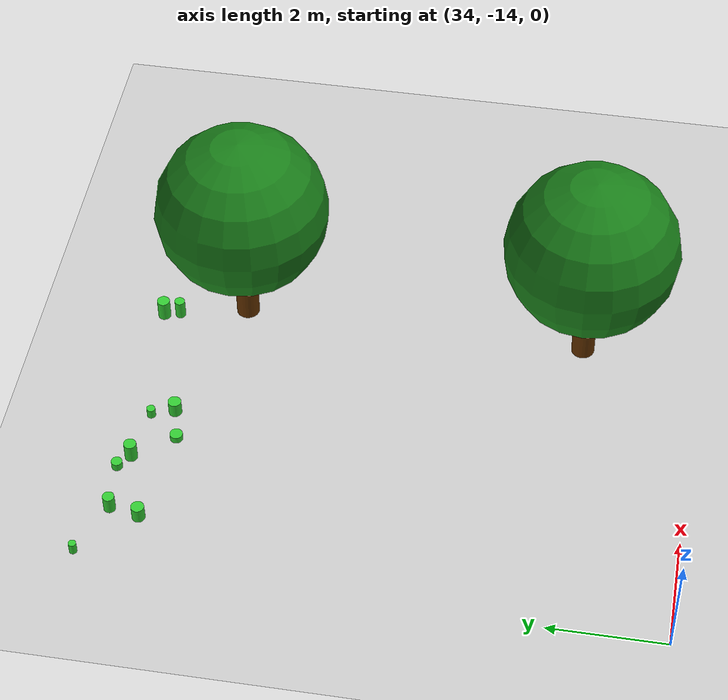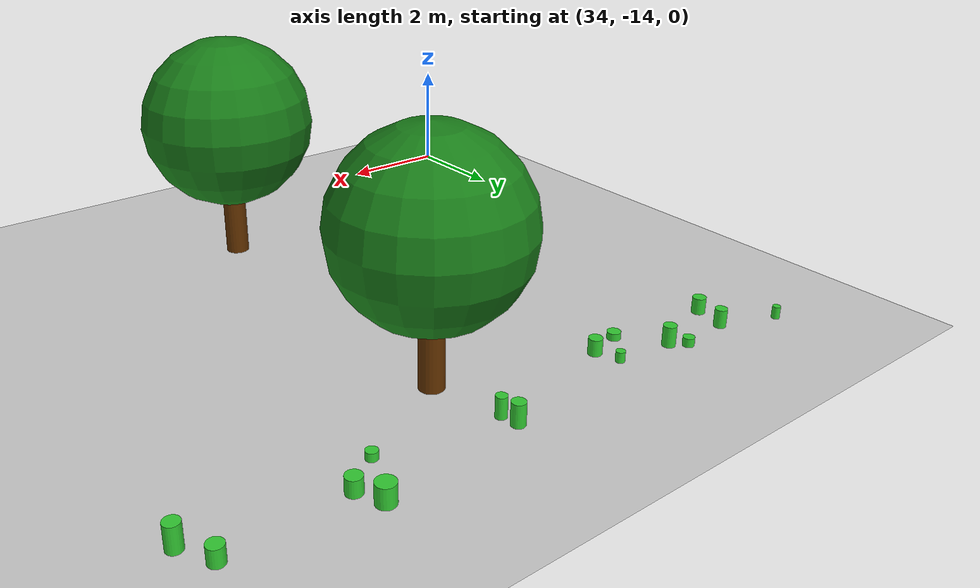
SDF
<sdf version="1.6">
 <world name="street_park_world">
  <include><uri>model://sun</uri></include>
  <include><uri>model://ground_plane</uri></include>
  <model name="tree_33">
   <pose>40 -6 0 0 0 0</pose>
   <static>true</static>
   <link name="trunk">
    <pose>0 0 1 0 0 0</pose>
    <collision name="collision">
     <geometry><cylinder><radius>0.2</radius><length>2</length></cylinder></geometry>
    </collision>
    <visual name="visual">
     <geometry><cylinder><radius>0.2</radius><length>2</length></cylinder></geometry>
     <material><ambient>0.4 0.2 0.0 1</ambient></material>
    </visual>
   </link>
   <link name="leaves">
    <pose>0 0 2.5 0 0 0</pose>
    <collision name="collision"><geometry><sphere><radius>1.5</radius></sphere></geometry></collision>
    <visual name="visual">
     <geometry><sphere><radius>1.5</radius></sphere></geometry>
     <material><ambient>0.1 0.5 0.1 1</ambient></material>
    </visual>
   </link>
  </model>
  <model name="tree_35">
   <pose>40 -12 0 0 0 0</pose>
   <static>true</static>
   <link name="trunk">
    <pose>0 0 1 0 0 0</pose>
    <collision name="collision">
     <geometry><cylinder><radius>0.2</radius><length>2</length></cylinder></geometry>
    </collision>
    <visual name="visual">
     <geometry><cylinder><radius>0.2</radius><length>2</length></cylinder></geometry>
     <material><ambient>0.4 0.2 0.0 1</ambient></material>
    </visual>
   </link>
   <link name="leaves">
    <pose>0 0 2.5 0 0 0</pose>
    <collision name="collision"><geometry><sphere><radius>1.5</radius></sphere></geometry></collision>
    <visual name="visual">
     <geometry><sphere><radius>1.5</radius></sphere></geometry>
     <material><ambient>0.1 0.5 0.1 1</ambient></material>
    </visual>
   </link>
  </model>
  <model name="weed_15">
   <pose>44.05710155729358 -4.60400033620427 0.13354246156619695 0 0 0</pose>
   <static>true</static>
   <link name="link">
    <collision name="collision">
     <geometry>
      <cylinder><radius>0.11846142509898745</radius><length>0.2670849231323939</length></cylinder>
     </geometry>
    </collision>
    <visual name="visual">
     <geometry>
      <cylinder><radius>0.11846142509898745</radius><length>0.2670849231323939</length></cylinder>
     </geometry>
     <material><ambient>0.2 0.8 0.2 1</ambient></material>
    </visual>
   </link>
  </model>
  <model name="weed_19">
   <pose>37.30928307664891 -4.8576074063776415 0.08973202497470788 0 0 0</pose>
   <static>true</static>
   <link name="link">
    <collision name="collision">
     <geometry>
      <cylinder><radius>0.07466275076939835</radius><length>0.17946404994941575</length></cylinder>
     </geometry>
    </collision>
    <visual name="visual">
     <geometry>
      <cylinder><radius>0.07466275076939835</radius><length>0.17946404994941575</length></cylinder>
     </geometry>
     <material><ambient>0.2 0.8 0.2 1</ambient></material>
    </visual>
   </link>
  </model>
  <model name="weed_55">
   <pose>42.1838428472243 -4.689147592857241 0.13132928020614115 0 0 0</pose>
   <static>true</static>
   <link name="link">
    <collision name="collision">
     <geometry>
      <cylinder><radius>0.1247975560379064</radius><length>0.2626585604122823</length></cylinder>
     </geometry>
    </collision>
    <visual name="visual">
     <geometry>
      <cylinder><radius>0.1247975560379064</radius><length>0.2626585604122823</length></cylinder>
     </geometry>
     <material><ambient>0.2 0.8 0.2 1</ambient></material>
    </visual>
   </link>
  </model>
  <model name="weed_59">
   <pose>35.12585827164938 -5.155298513095925 0.1391778730300162 0 0 0</pose>
   <static>true</static>
   <link name="link">
    <collision name="collision">
     <geometry>
      <cylinder><radius>0.11193815103321031</radius><length>0.2783557460600324</length></cylinder>
     </geometry>
    </collision>
    <visual name="visual">
     <geometry>
      <cylinder><radius>0.11193815103321031</radius><length>0.2783557460600324</length></cylinder>
     </geometry>
     <material><ambient>0.2 0.8 0.2 1</ambient></material>
    </visual>
   </link>
  </model>
  <model name="weed_65">
   <pose>34.27777563177956 -4.26902166052164 0.1054290633108326 0 0 0</pose>
   <static>true</static>
   <link name="link">
    <collision name="collision">
     <geometry>
      <cylinder><radius>0.06577468323572319</radius><length>0.2108581266216652</length></cylinder>
     </geometry>
    </collision>
    <visual name="visual">
     <geometry>
      <cylinder><radius>0.06577468323572319</radius><length>0.2108581266216652</length></cylinder>
     </geometry>
     <material><ambient>0.2 0.8 0.2 1</ambient></material>
    </visual>
   </link>
  </model>
  <model name="weed_75">
   <pose>36.35357144039038 -4.736173595112269 0.1751892529829025 0 0 0</pose>
   <static>true</static>
   <link name="link">
    <collision name="collision">
     <geometry>
      <cylinder><radius>0.10825095664897941</radius><length>0.350378505965805</length></cylinder>
     </geometry>
    </collision>
    <visual name="visual">
     <geometry>
      <cylinder><radius>0.10825095664897941</radius><length>0.350378505965805</length></cylinder>
     </geometry>
     <material><ambient>0.2 0.8 0.2 1</ambient></material>
    </visual>
   </link>
  </model>
  <model name="weed_89">
   <pose>41.62808841853999 -5.128347092467844 0.06626038208220666 0 0 0</pose>
   <static>true</static>
   <link name="link">
    <collision name="collision">
     <geometry>
      <cylinder><radius>0.09345637585646444</radius><length>0.13252076416441333</length></cylinder>
     </geometry>
    </collision>
    <visual name="visual">
     <geometry>
      <cylinder><radius>0.09345637585646444</radius><length>0.13252076416441333</length></cylinder>
     </geometry>
     <material><ambient>0.2 0.8 0.2 1</ambient></material>
    </visual>
   </link>
  </model>
  <model name="weed_97">
   <pose>39.63273036571647 -4.5517548766181735 0.18542083185988745 0 0 0</pose>
   <static>true</static>
   <link name="link">
    <collision name="collision">
     <geometry>
      <cylinder><radius>0.11155149159513805</radius><length>0.3708416637197749</length></cylinder>
     </geometry>
    </collision>
    <visual name="visual">
     <geometry>
      <cylinder><radius>0.11155149159513805</radius><length>0.3708416637197749</length></cylinder>
     </geometry>
     <material><ambient>0.2 0.8 0.2 1</ambient></material>
    </visual>
   </link>
  </model>
  <model name="weed_111">
   <pose>35.228333322939335 -4.6422867481335315 0.15789109419139508 0 0 0</pose>
   <static>true</static>
   <link name="link">
    <collision name="collision">
     <geometry>
      <cylinder><radius>0.1004778164824402</radius><length>0.31578218838279015</length></cylinder>
     </geometry>
    </collision>
    <visual name="visual">
     <geometry>
      <cylinder><radius>0.1004778164824402</radius><length>0.31578218838279015</length></cylinder>
     </geometry>
     <material><ambient>0.2 0.8 0.2 1</ambient></material>
    </visual>
   </link>
  </model>
  <model name="weed_163">
   <pose>39.6957237091293 -4.8311791378280375 0.17331734679491456 0 0 0</pose>
   <static>true</static>
   <link name="link">
    <collision name="collision">
     <geometry>
      <cylinder><radius>0.09007074422519398</radius><length>0.3466346935898291</length></cylinder>
     </geometry>
    </collision>
    <visual name="visual">
     <geometry>
      <cylinder><radius>0.09007074422519398</radius><length>0.3466346935898291</length></cylinder>
     </geometry>
     <material><ambient>0.2 0.8 0.2 1</ambient></material>
    </visual>
   </link>
  </model>
  <model name="weed_183">
   <pose>37.44655091340907 -5.245915193887623 0.1377994437916782 0 0 0</pose>
   <static>true</static>
   <link name="link">
    <collision name="collision">
     <geometry>
      <cylinder><radius>0.11347847194540868</radius><length>0.2755988875833564</length></cylinder>
     </geometry>
    </collision>
    <visual name="visual">
     <geometry>
      <cylinder><radius>0.11347847194540868</radius><length>0.2755988875833564</length></cylinder>
     </geometry>
     <material><ambient>0.2 0.8 0.2 1</ambient></material>
    </visual>
   </link>
  </model>
  <model name="weed_221">
   <pose>36.10884812389948 -4.551344760021289 0.07369634331076805 0 0 0</pose>
   <static>true</static>
   <link name="link">
    <collision name="collision">
     <geometry>
      <cylinder><radius>0.09417297836038144</radius><length>0.1473926866215361</length></cylinder>
     </geometry>
    </collision>
    <visual name="visual">
     <geometry>
      <cylinder><radius>0.09417297836038144</radius><length>0.1473926866215361</length></cylinder>
     </geometry>
     <material><ambient>0.2 0.8 0.2 1</ambient></material>
    </visual>
   </link>
  </model>
  <model name="weed_225">
   <pose>44.34228392642078 -5.086676944563423 0.19669167268652943 0 0 0</pose>
   <static>true</static>
   <link name="link">
    <collision name="collision">
     <geometry>
      <cylinder><radius>0.11582298159286807</radius><length>0.39338334537305886</length></cylinder>
     </geometry>
    </collision>
    <visual name="visual">
     <geometry>
      <cylinder><radius>0.11582298159286807</radius><length>0.39338334537305886</length></cylinder>
     </geometry>
     <material><ambient>0.2 0.8 0.2 1</ambient></material>
    </visual>
   </link>
  </model>
  <model name="weed_237">
   <pose>41.98501885164768 -4.295803164341649 0.15863250681132773 0 0 0</pose>
   <static>true</static>
   <link name="link">
    <collision name="collision">
     <geometry>
      <cylinder><radius>0.14799422427819034</radius><length>0.31726501362265547</length></cylinder>
     </geometry>
    </collision>
    <visual name="visual">
     <geometry>
      <cylinder><radius>0.14799422427819034</radius><length>0.31726501362265547</length></cylinder>
     </geometry>
     <material><ambient>0.2 0.8 0.2 1</ambient></material>
    </visual>
   </link>
  </model>
  <model name="weed_265">
   <pose>36.873074620370645 -5.397112997926969 0.062118571611618795 0 0 0</pose>
   <static>true</static>
   <link name="link">
    <collision name="collision">
     <geometry>
      <cylinder><radius>0.110829742363344</radius><length>0.12423714322323759</length></cylinder>
     </geometry>
    </collision>
    <visual name="visual">
     <geometry>
      <cylinder><radius>0.110829742363344</radius><length>0.12423714322323759</length></cylinder>
     </geometry>
     <material><ambient>0.2 0.8 0.2 1</ambient></material>
    </visual>
   </link>
  </model>
 </world>
</sdf>
